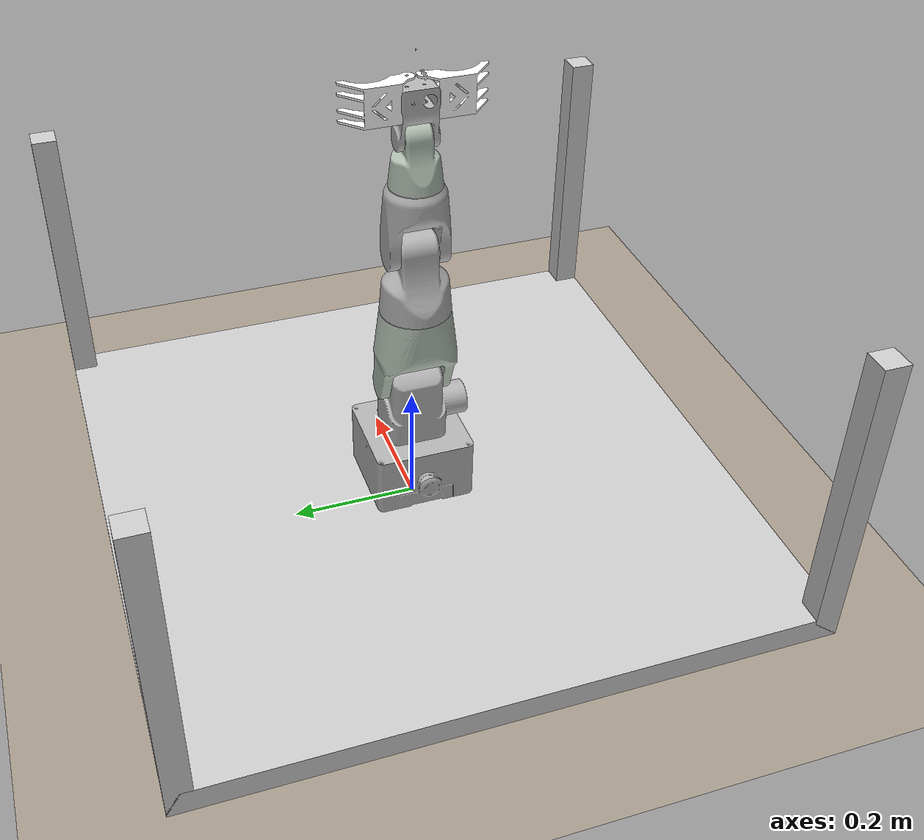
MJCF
<mujoco model="xbot_arm">

  <include file="../scene.xml"/>
  <include file="xbot_arm_options.xml"/>

  <worldbody>
    <!-- 放置机械臂 -->
    <body name="xbot_arm" pos="0 0 0">
      <include file="xbot_arm.xml"/>
    </body>

    <!-- 添加工作平台 -->
    <body name="table" pos="0 0 0">
      <geom size="0.5 0.5 0.02" pos="0 0 0.02" type="box" rgba="0.8 0.8 0.8 1" condim="4" solimp="2 1 0.01" solref="0.01 1" friction="1 0.005 0.0001"/>
      <geom size="0.02 0.02 0.25" pos=" 0.48  0.48 0.25" type="box" rgba="0.8 0.8 0.8 1"/>
      <geom size="0.02 0.02 0.25" pos="-0.48  0.48 0.25" type="box" rgba="0.8 0.8 0.8 1"/>
      <geom size="0.02 0.02 0.25" pos=" 0.48 -0.48 0.25" type="box" rgba="0.8 0.8 0.8 1"/>
      <geom size="0.02 0.02 0.25" pos="-0.48 -0.48 0.25" type="box" rgba="0.8 0.8 0.8 1"/>
    </body>
  </worldbody>

  <actuator>
    <include file="xbot_arm_control.xml"/>
  </actuator>

  <sensor>
    <!-- 关节位置传感器 -->
    <jointpos name="qpos_sensor_1" joint="arm_1_joint"/>
    <jointpos name="qpos_sensor_2" joint="arm_2_joint"/>
    <jointpos name="qpos_sensor_3" joint="arm_3_joint"/>
    <jointpos name="qpos_sensor_4" joint="arm_4_joint"/>
    <jointpos name="qpos_sensor_5" joint="arm_5_joint"/>
    <jointpos name="qpos_sensor_6" joint="arm_6_joint"/>
    <!-- 关节速度传感器 -->
    <jointvel name="qvel_sensor_1" joint="arm_1_joint"/>
    <jointvel name="qvel_sensor_2" joint="arm_2_joint"/>
    <jointvel name="qvel_sensor_3" joint="arm_3_joint"/>
    <jointvel name="qvel_sensor_4" joint="arm_4_joint"/>
    <jointvel name="qvel_sensor_5" joint="arm_5_joint"/>
    <jointvel name="qvel_sensor_6" joint="arm_6_joint"/>
    <!-- 末端位置和姿态传感器 -->
    <framepos name="end_effector_pos" objtype="site" objname="endpoint"/>
    <framequat name="end_effector_quat" objtype="site" objname="endpoint"/>
  </sensor>

  <keyframe>
    <key qpos="0 0 0 0 0 0 0 0"/>
  </keyframe>
</mujoco>

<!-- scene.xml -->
<mujocoinclude>
  <default>
    <default class="obj_visual">
      <geom group="2" type="mesh" contype="0" conaffinity="0"/>
    </default>
    <default class="obj_collision">
      <geom group="3" condim="3" solimp="0.99 0.995 0.01" solref="0.005 1" friction="1 0.005 0.0001" type="mesh"/>
    </default>
  </default>

  <asset>
    <texture name="grid" type="2d" builtin="checker" rgb1=".9 .8 .7" rgb2=".4 .4 .4" width="300" height="300" mark="edge" markrgb=".2 .3 .4"/>
    <material name="grid" texture="grid" texrepeat="2 2" texuniform="true" reflectance=".2"/>
  </asset>

  <visual>
    <global offwidth="1920" offheight="1080"/>
    <quality shadowsize="4096" offsamples="4"/>
    <headlight ambient="0.4 0.4 0.4"/>
  </visual>

  <worldbody>
    <light directional='true' diffuse="0.2 0.2 0.2" pos='0.5 1. 2.5'/>
    <light directional='true' diffuse="0.2 0.2 0.2" pos='0 1. 2.5'/>
    <geom name="ground" type="plane" pos="0 0 0" size="3 3 0.1" material="grid" solimp=".9 .95 .001" solref='-10000 -1000'/>
  </worldbody>

</mujocoinclude>

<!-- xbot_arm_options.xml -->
<mujocoinclude>
  <option integrator="RK4" solver="Newton" />
  <compiler angle="radian" meshdir="../../meshes/" texturedir="../meshes/"/>

  <!-- 材质定义 -->
  <asset>
    <!-- 材质定义 - 从URDF中提取准确颜色 -->
    <material name="xbot_material" rgba="0.7 0.7 0.7 1" specular="0.1" shininess="0.1"/>
    <material name="xbot_green_material" rgba="0.7 0.75 0.7 1" specular="0.1" shininess="0.1"/>
    <!-- 夹持器材质 -->
    <material name="gripper_material" rgba="1 1 1 1" specular="0.1" shininess="0.1"/>

    <!-- 网格定义 -->
    <!-- 网格定义 - 使用正确的路径和比例 -->
    <mesh name="base_link" file="../../meshes/xbot_arm/base_link.STL" scale="1.0 1.0 1.0"/>
    <mesh name="arm_1_link" file="../../meshes/xbot_arm/arm_1_link.STL" scale="1.0 1.0 1.0"/>
    <mesh name="arm_2_link" file="../../meshes/xbot_arm/arm_2_link.STL" scale="1.0 1.0 1.0"/>
    <mesh name="arm_3_link" file="../../meshes/xbot_arm/arm_3_link.STL" scale="1.0 1.0 1.0"/>
    <mesh name="arm_4_link" file="../../meshes/xbot_arm/arm_4_link.STL" scale="1.0 1.0 1.0"/>
    <mesh name="arm_5_link" file="../../meshes/xbot_arm/arm_5_link.STL" scale="1.0 1.0 1.0"/>
    <mesh name="arm_6_link" file="../../meshes/xbot_arm/arm_6_link.STL" scale="1.0 1.0 1.0"/>
    <mesh name="gripper_1_link" file="../../meshes/xbot_arm/gripper_1_link.STL" scale="1.0 1.0 1.0"/>
    <mesh name="gripper_2_link" file="../../meshes/xbot_arm/gripper_2_link.STL" scale="1.0 1.0 1.0"/>
  </asset>

  <!-- 接触排除配置，避免自碰撞问题 -->
  <contact>
    <exclude body1="arm_1_link" body2="arm_3_link"/>
    <exclude body1="arm_1_link" body2="arm_4_link"/>
    <exclude body1="arm_2_link" body2="arm_4_link"/>
    <exclude body1="arm_2_link" body2="arm_5_link"/>
    <exclude body1="arm_3_link" body2="arm_5_link"/>
    <exclude body1="arm_3_link" body2="arm_6_link"/>
  </contact>

  <!-- 夹持器联动控制 -->
  <tendon>
    <fixed name="gripper_gear">
      <joint joint="gripper_1_joint" coef="1"/>
      <joint joint="gripper_2_joint" coef="1"/>
    </fixed>
  </tendon>
</mujocoinclude>

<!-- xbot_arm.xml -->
<mujocoinclude>
  <!-- XBot-Arm 机械臂模型 -->
  <body name="arm_base">
    <site name="armbasepoint" pos="0 0 0" size="0.001" type="sphere"/>

    <!-- 基座 -->
    <body name="base_link">
      <inertial pos="-0.00594343164731706 -0.00101779633653512 0.070063016301284" mass="1.38676498234547" diaginertia="0.00442668602597922 0.00444008131004974 0.00774957715043441"/>
      <geom mesh="base_link" pos="0 0 0" material="xbot_material"/>

      <!-- 连杆1 -->
      <body name="arm_1_link" pos="0 0 0.14" euler="3.1416 0 0">
        <joint name="arm_1_joint" axis="0 0 1" type="hinge" limited="true" range="-2.094 2.094" damping="1.0" frictionloss="1.0"/>
        <inertial pos="-0.000117276290344319 0.0122228931530341 -0.0624701032538624" mass="0.139955029249829" diaginertia="0.000325457683704532 0.000236310540102376 0.000149250424678437"/>
        <geom mesh="arm_1_link" pos="0 0 0" material="xbot_material"/>

        <!-- 连杆2 -->
        <body name="arm_2_link" pos="0 0 -0.095" euler="-1.5708 0 0">
          <joint name="arm_2_joint" axis="0 0 1" type="hinge" limited="true" range="-2.094 1.5707963267948966" damping="1.0" frictionloss="1.0"/>
          <inertial pos="-0.0174680236422027 0.0906428723777263 -3.29773055841057E-07" mass="0.169587438537964" diaginertia="0.000621052722745594 0.000313103181930873 0.000405564215148294"/>
          <geom mesh="arm_2_link" pos="0 0 0" material="xbot_green_material"/>

          <!-- 连杆3 -->
          <body name="arm_3_link" pos="-0.018 0.145 0" euler="1.5708 0 0">
            <joint name="arm_3_joint" axis="0 0 1" type="hinge" limited="true" range="-2.793 2.793" damping="1.0" frictionloss="1.0"/>
            <inertial pos="-0.000485421157864062 6.83606345788855E-05 -0.0518192203685102" mass="0.113439004135591" diaginertia="0.000235493816702144 0.00016178376053715 0.000115808035506604"/>
            <geom mesh="arm_3_link" pos="0 0 0" material="xbot_material"/>

            <!-- 连杆4 -->
            <body name="arm_4_link" pos="0 0 -0.105" euler="-1.5708 0 0">
              <joint name="arm_4_joint" axis="0 0 1" type="hinge" limited="true" range="-1.92 1.92" damping="1.0" frictionloss="1.0"/>
              <inertial pos="-0.000523676254705792 0.0548426547509552 -2.32870051976362E-06" mass="0.0923387760232059" diaginertia="0.000210731589973129 0.000113562778686391 0.000125255151693492"/>
              <geom mesh="arm_4_link" pos="0 0 0" material="xbot_material"/>

              <!-- 连杆5 -->
              <body name="arm_5_link" pos="0 0.105 0" euler="1.5708 0 0">
                <joint name="arm_5_joint" axis="0 0 1" type="hinge" limited="true" range="-2.793 2.793" damping="1.0" frictionloss="1.0"/>
                <inertial pos="-0.000318440471593399 -4.33257243015121E-09 -0.0421503668391696" mass="0.0467464068633803" diaginertia="5.04548630748624E-05 3.77221825095438E-05 2.16144252369209E-05"/>
                <geom mesh="arm_5_link" pos="0 0 0" material="xbot_green_material"/>

                <!-- 连杆6 -->
                <body name="arm_6_link" pos="0 -0.0002 -0.075" euler="-1.5708 0 0">
                  <joint name="arm_6_joint" axis="0 0 1" type="hinge" limited="true" range="-1.57 1.57" damping="1.0" frictionloss="1.0"/>
                  <inertial pos="0.00023077781229322 0.0477776544969339 -0.000274578550932736" mass="0.0663534128705839" diaginertia="4.46094691893757E-05 3.14288652751225E-05 5.02053835003699E-05"/>
                  <geom mesh="arm_6_link" pos="0 0 0" material="xbot_material"/>

                  <!-- 夹持器1 -->
                  <body name="gripper_1_link" pos="-0.0001 0.06175 0.0115" euler="1.5708 0 1.5708">
                    <joint name="gripper_1_joint" axis="0 0 1" type="hinge" limited="true" range="0 0.698" damping="1.0" frictionloss="1.0"/>
                    <inertial pos="0.0428524050252714 0.0102173668833365 1.53174098056555E-05" mass="0.0229460702572688" diaginertia="1.29555143093886E-05 2.6397024313168E-05 1.7220072843041E-05"/>
                    <geom mesh="gripper_1_link" pos="0 0 0" material="gripper_material"/>
                  </body>

                  <!-- 夹持器2 -->
                  <body name="gripper_2_link" pos="-0.0001 0.06175 -0.012" euler="-1.5708 0 1.5708">
                    <joint name="gripper_2_joint" axis="0 0 1" type="hinge" limited="true" range="0 0.698" damping="1.0" frictionloss="1.0"/>
                    <inertial pos="0.0428304976382079 0.0102055784464402 9.00813000661443E-07" mass="0.0229585233092397" diaginertia="1.30784892266813E-05 2.67601282938736E-05 1.74955869845825E-05"/>
                    <geom mesh="gripper_2_link" pos="0 0 0" material="gripper_material"/>
                  </body>

                  <!-- 夹持器中心点 -->
                  <body name="gripper_centor_link" pos="-0.000 0.125 0" euler="-1.5708 0 1.5708">
                    <site name="endpoint" pos="0 0 0" size="0.001" type="sphere"/>
                  </body>
                </body>
              </body>
            </body>
          </body>
        </body>
      </body>
    </body>
  </body>
</mujocoinclude>

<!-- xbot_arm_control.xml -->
<mujocoinclude>
  <!-- 臂关节执行器配置 -->
  <!-- !! 大幅降低前三个关节的 kp 值 !! -->
  <position name="joint1" ctrllimited="true" ctrlrange="-2.094 2.094" joint="arm_1_joint" kp="8" user="1" forcelimited="true" forcerange="-100 100"/>
  <position name="joint2" ctrllimited="true" ctrlrange="-2.094 1.5708" joint="arm_2_joint" kp="8" user="1" forcelimited="true" forcerange="-100 100"/>
  <position name="joint3" ctrllimited="true" ctrlrange="-2.793 2.793" joint="arm_3_joint" kp="8" user="1" forcelimited="true" forcerange="-100 100"/>

  <!-- 稍微降低 wrist 关节的 kp 值，保持一致性 -->
  <position name="joint4" ctrllimited="true" ctrlrange="-1.92 1.92" joint="arm_4_joint" kp="8" user="1" forcelimited="true" forcerange="-50 50"/>
  <position name="joint5" ctrllimited="true" ctrlrange="-2.793 2.793" joint="arm_5_joint" kp="8" user="1" forcelimited="true" forcerange="-50 50"/>
  <position name="joint6" ctrllimited="true" ctrlrange="-1.57 1.57" joint="arm_6_joint" kp="8" user="1" forcelimited="true" forcerange="-30 30"/>

  <!-- 夹爪的 kp 值通常可以保持原样或适当减小 -->
  <position name="gripper" tendon='gripper_gear' ctrllimited="true" ctrlrange="0.0 0.698" kp="3" user="1" forcelimited="true" forcerange="-10 10"/>

</mujocoinclude>
